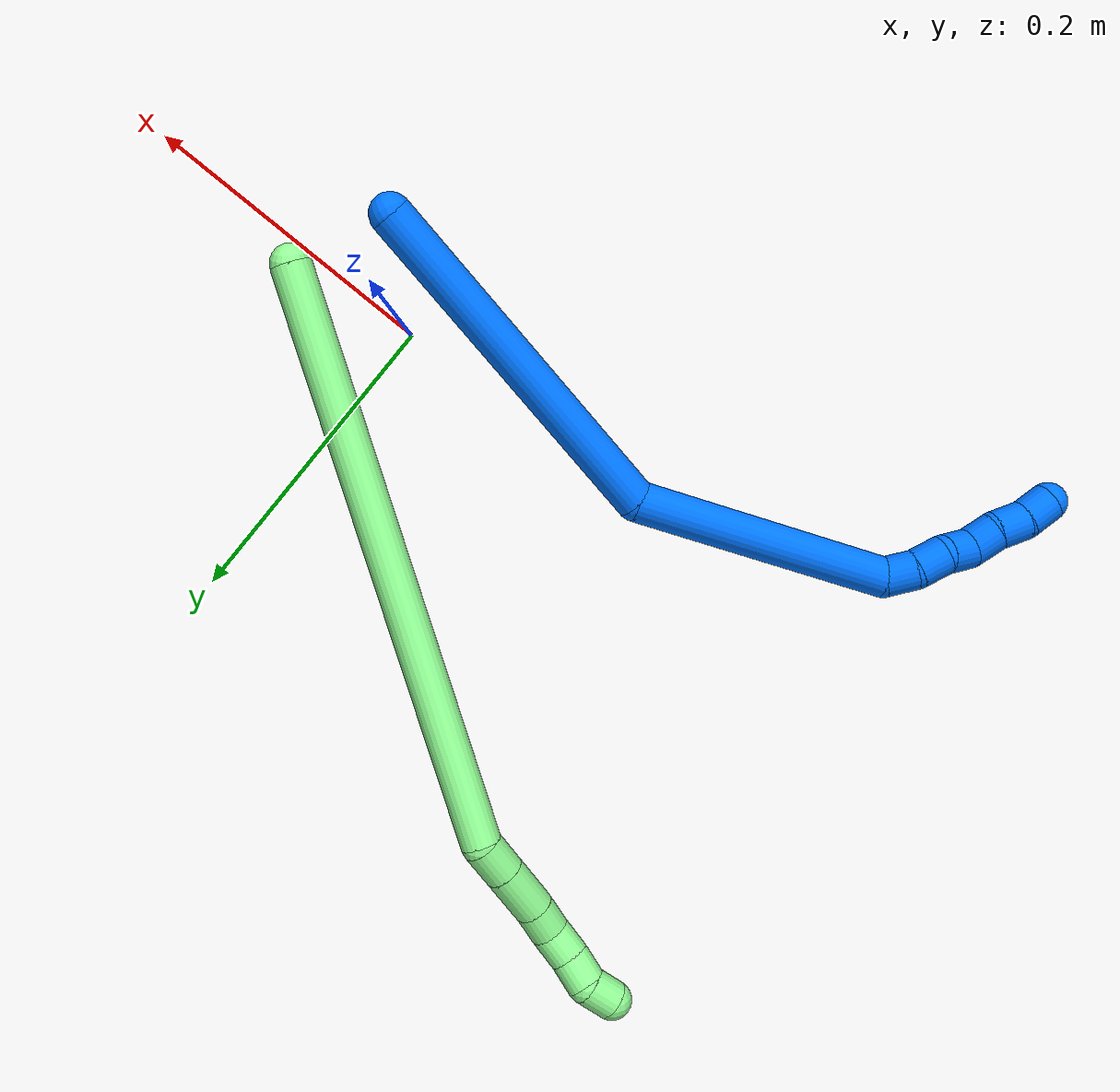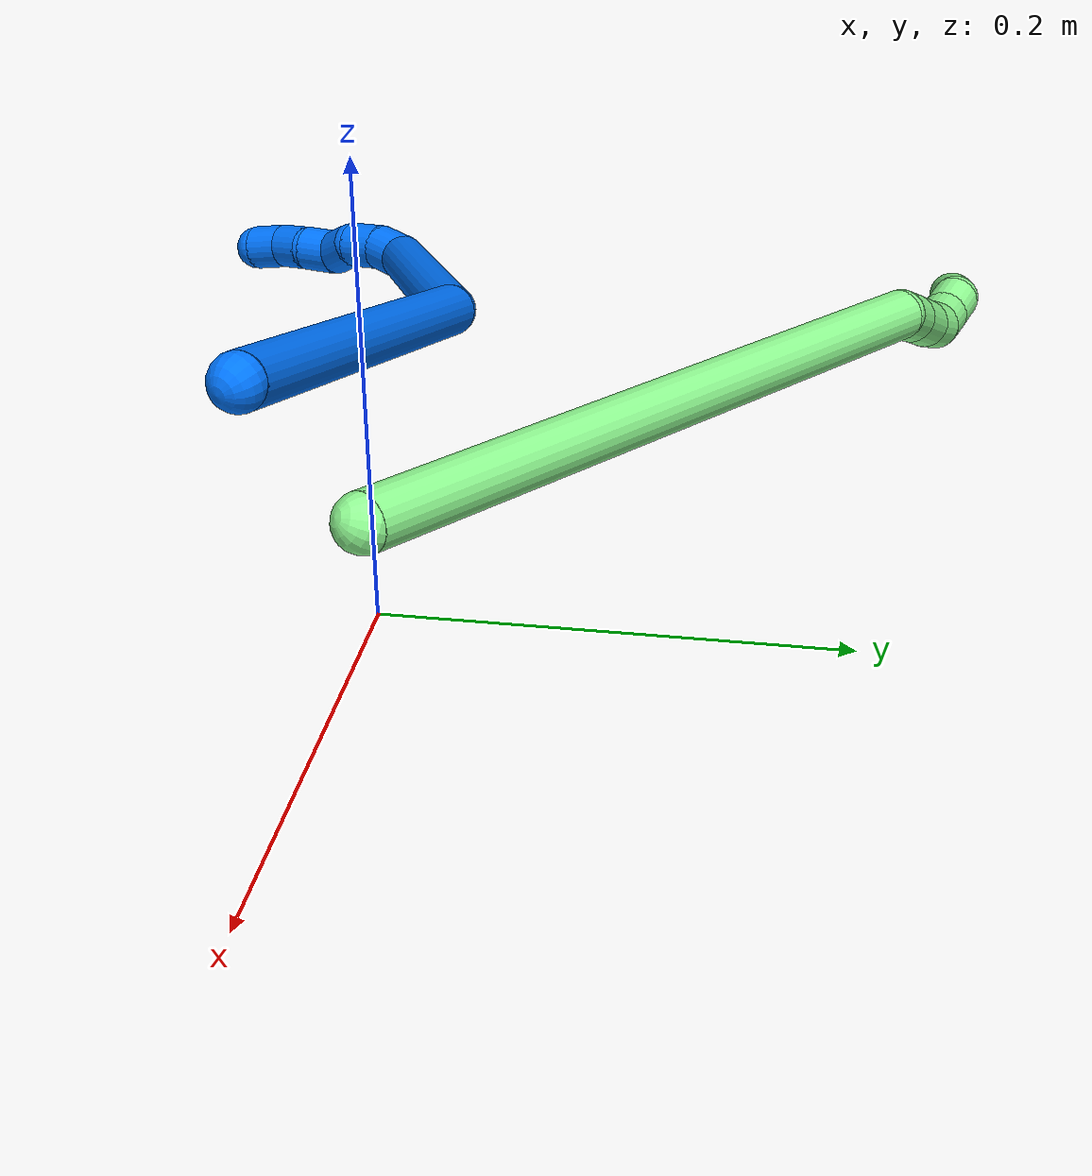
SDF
<sdf version="1.7">
 <world name="default">
  <model name="photoneo_s_sensor">
   <static>1</static>
   <pose>0 0 2 1.57079 1.57079 3.14159</pose>
   <link name="link">
    <inertial><mass>0.1</mass></inertial>
    <sensor name="sensor" type="depth">
     <update_rate>30</update_rate>
     <camera>
      <horizontal_fov>1.22</horizontal_fov>
      <image><width>1920</width><height>1200</height><format>B8G8R8</format></image>
      <clip><near>0.1</near><far>4</far></clip>
      <depth_camera><output>points</output></depth_camera>
     </camera>
     <plugin name="camera_plugin" filename="libgazebo_ros_depth_camera.so">
      <baseline>0.2</baseline>
      <alwaysOn>1</alwaysOn>
      <updateRate>0.0</updateRate>
      <cameraName>camera_ir</cameraName>
      <imageTopicName>/camera/color/image_raw</imageTopicName>
      <cameraInfoTopicName>/camera/color/camera_info</cameraInfoTopicName>
      <depthImageTopicName>/camera/depth/image_raw</depthImageTopicName>
      <depthImageCameraInfoTopicName>/camera/depth/camera_info</depthImageCameraInfoTopicName>
      <pointCloudTopicName>/camera/depth/points</pointCloudTopicName>
      <frameName>fr_optical</frameName>
      <pointCloudCutoff>0.1</pointCloudCutoff>
      <pointCloudCutoffMax>2.0</pointCloudCutoffMax>
      <distortionK1>0</distortionK1>
      <distortionK2>0</distortionK2>
      <distortionK3>0</distortionK3>
      <distortionT1>0</distortionT1>
      <distortionT2>0</distortionT2>
      <CxPrime>0</CxPrime>
      <Cx>0</Cx>
      <Cy>0</Cy>
      <focalLength>0</focalLength>
      <hackBaseline>0</hackBaseline>
     </plugin>
    </sensor>
   </link>
  </model>
  <model name="bin">
   <static>1</static>
   <link name="bottom">
    <collision name="collision-bottom">
     <pose>0 0 -0.01 0 -0 0</pose>
     <geometry><box><size>0.8 0.6 0.02</size></box></geometry>
     <surface>
      <friction><ode><mu>100</mu><mu2>100</mu2></ode></friction>
      <contact><collide_bitmask>65535</collide_bitmask></contact>
     </surface>
    </collision>
   </link>
   <link name="west_wall">
    <collision name="collision-west_wall">
     <pose>-0.41 0 0.1 0 -0 0</pose>
     <geometry><box><size>0.02 0.6 0.2</size></box></geometry>
     <surface>
      <friction><ode><mu>100</mu><mu2>100</mu2></ode></friction>
      <contact><collide_bitmask>65535</collide_bitmask></contact>
     </surface>
    </collision>
   </link>
   <link name="east_wall">
    <collision name="collision-east_wall">
     <pose>0.41 0 0.1 0 -0 0</pose>
     <geometry><box><size>0.02 0.6 0.2</size></box></geometry>
     <surface>
      <friction><ode><mu>100</mu><mu2>100</mu2></ode></friction>
      <contact><collide_bitmask>65535</collide_bitmask></contact>
     </surface>
    </collision>
   </link>
   <link name="south_wall">
    <collision name="collision-south_wall">
     <pose>0 -0.31 0.1 0 -0 0</pose>
     <geometry><box><size>0.8 0.02 0.2</size></box></geometry>
     <surface>
      <friction><ode><mu>100</mu><mu2>100</mu2></ode></friction>
      <contact><collide_bitmask>65535</collide_bitmask></contact>
     </surface>
    </collision>
   </link>
   <link name="north_wall">
    <collision name="collision-north_wall">
     <pose>0 0.31 0.1 0 -0 0</pose>
     <geometry><box><size>0.8 0.02 0.2</size></box></geometry>
     <surface>
      <friction><ode><mu>100</mu><mu2>100</mu2></ode></friction>
      <contact><collide_bitmask>65535</collide_bitmask></contact>
     </surface>
    </collision>
   </link>
  </model>
  <model name="13">
   <static>0</static>
   <link name="13">
    <collision name="collision-cylinder-e_1_1_4">
     <pose>-0.074193 -0.024125 0.162203 0.147653 -0.424874 -0.031903</pose>
     <geometry><cylinder><radius>0.0125</radius><length>0.359979</length></cylinder></geometry>
     <surface>
      <friction><ode><mu>1.16</mu><mu2>1.16</mu2><slip1>0</slip1><slip2>0</slip2></ode></friction>
      <contact><ode><kp>1e+06</kp><kd>1</kd><max_vel>0</max_vel><min_depth>0.001</min_depth></ode></contact>
     </surface>
    </collision>
    <visual name="visual-cylinder-e_1_1_4">
     <pose>-0.074193 -0.024125 0.162203 0.147653 -0.424874 -0.031903</pose>
     <geometry><cylinder><radius>0.0125</radius><length>0.359979</length></cylinder></geometry>
     <material><ambient>0.564706 0.984314 0.572549 1</ambient></material>
    </visual>
    <collision name="collision-cylinder-e_2_4_5">
     <pose>-0.153227 -0.044306 0.334832 -0.361691 -0.409707 0.075941</pose>
     <geometry><cylinder><radius>0.0125</radius><length>0.024309</length></cylinder></geometry>
     <surface>
      <friction><ode><mu>1.16</mu><mu2>1.16</mu2><slip1>0</slip1><slip2>0</slip2></ode></friction>
      <contact><ode><kp>1e+06</kp><kd>1</kd><max_vel>0</max_vel><min_depth>0.001</min_depth></ode></contact>
     </surface>
    </collision>
    <visual name="visual-cylinder-e_2_4_5">
     <pose>-0.153227 -0.044306 0.334832 -0.361691 -0.409707 0.075941</pose>
     <geometry><cylinder><radius>0.0125</radius><length>0.024309</length></cylinder></geometry>
     <material><ambient>0.564706 0.984314 0.572549 1</ambient></material>
    </visual>
    <collision name="collision-cylinder-e_3_5_6">
     <pose>-0.164613 -0.034723 0.359867 -0.368338 -0.395893 0.074691</pose>
     <geometry><cylinder><radius>0.0125</radius><length>0.033941</length></cylinder></geometry>
     <surface>
      <friction><ode><mu>1.16</mu><mu2>1.16</mu2><slip1>0</slip1><slip2>0</slip2></ode></friction>
      <contact><ode><kp>1e+06</kp><kd>1</kd><max_vel>0</max_vel><min_depth>0.001</min_depth></ode></contact>
     </surface>
    </collision>
    <visual name="visual-cylinder-e_3_5_6">
     <pose>-0.164613 -0.034723 0.359867 -0.368338 -0.395893 0.074691</pose>
     <geometry><cylinder><radius>0.0125</radius><length>0.033941</length></cylinder></geometry>
     <material><ambient>0.564706 0.984314 0.572549 1</ambient></material>
    </visual>
    <collision name="collision-cylinder-e_4_6_7">
     <pose>-0.175063 -0.026414 0.383832 -0.278034 -0.381672 0.054048</pose>
     <geometry><cylinder><radius>0.0125</radius><length>0.02097</length></cylinder></geometry>
     <surface>
      <friction><ode><mu>1.16</mu><mu2>1.16</mu2><slip1>0</slip1><slip2>0</slip2></ode></friction>
      <contact><ode><kp>1e+06</kp><kd>1</kd><max_vel>0</max_vel><min_depth>0.001</min_depth></ode></contact>
     </surface>
    </collision>
    <visual name="visual-cylinder-e_4_6_7">
     <pose>-0.175063 -0.026414 0.383832 -0.278034 -0.381672 0.054048</pose>
     <geometry><cylinder><radius>0.0125</radius><length>0.02097</length></cylinder></geometry>
     <material><ambient>0.564706 0.984314 0.572549 1</ambient></material>
    </visual>
    <collision name="collision-cylinder-e_5_7_8">
     <pose>-0.185608 -0.02307 0.401108 -0.084824 -0.695921 0.030783</pose>
     <geometry><cylinder><radius>0.0125</radius><length>0.020714</length></cylinder></geometry>
     <surface>
      <friction><ode><mu>1.16</mu><mu2>1.16</mu2><slip1>0</slip1><slip2>0</slip2></ode></friction>
      <contact><ode><kp>1e+06</kp><kd>1</kd><max_vel>0</max_vel><min_depth>0.001</min_depth></ode></contact>
     </surface>
    </collision>
    <visual name="visual-cylinder-e_5_7_8">
     <pose>-0.185608 -0.02307 0.401108 -0.084824 -0.695921 0.030783</pose>
     <geometry><cylinder><radius>0.0125</radius><length>0.020714</length></cylinder></geometry>
     <material><ambient>0.564706 0.984314 0.572549 1</ambient></material>
    </visual>
    <collision name="collision-cylinder-e_6_8_9">
     <pose>-0.199041 -0.023475 0.416306 0.14702 -0.745548 -0.057581</pose>
     <geometry><cylinder><radius>0.0125</radius><length>0.020027</length></cylinder></geometry>
     <surface>
      <friction><ode><mu>1.16</mu><mu2>1.16</mu2><slip1>0</slip1><slip2>0</slip2></ode></friction>
      <contact><ode><kp>1e+06</kp><kd>1</kd><max_vel>0</max_vel><min_depth>0.001</min_depth></ode></contact>
     </surface>
    </collision>
    <visual name="visual-cylinder-e_6_8_9">
     <pose>-0.199041 -0.023475 0.416306 0.14702 -0.745548 -0.057581</pose>
     <geometry><cylinder><radius>0.0125</radius><length>0.020027</length></cylinder></geometry>
     <material><ambient>0.564706 0.984314 0.572549 1</ambient></material>
    </visual>
    <collision name="collision-cylinder-e_7_9_2">
     <pose>-0.212263 -0.02036 0.43004 -0.575842 -0.695889 0.214007</pose>
     <geometry><cylinder><radius>0.0125</radius><length>0.02006</length></cylinder></geometry>
     <surface>
      <friction><ode><mu>1.16</mu><mu2>1.16</mu2><slip1>0</slip1><slip2>0</slip2></ode></friction>
      <contact><ode><kp>1e+06</kp><kd>1</kd><max_vel>0</max_vel><min_depth>0.001</min_depth></ode></contact>
     </surface>
    </collision>
    <visual name="visual-cylinder-e_7_9_2">
     <pose>-0.212263 -0.02036 0.43004 -0.575842 -0.695889 0.214007</pose>
     <geometry><cylinder><radius>0.0125</radius><length>0.02006</length></cylinder></geometry>
     <material><ambient>0.564706 0.984314 0.572549 1</ambient></material>
    </visual>
    <collision name="collision-sphere-2">
     <pose>-0.218693 -0.016169 0.436497 0 -0 0</pose>
     <geometry><sphere><radius>0.0125</radius></sphere></geometry>
     <surface>
      <friction><ode><mu>1.16</mu><mu2>1.16</mu2><slip1>0</slip1><slip2>0</slip2></ode></friction>
      <contact><ode><kp>1e+06</kp><kd>1</kd><max_vel>0</max_vel><min_depth>0.001</min_depth></ode></contact>
     </surface>
    </collision>
    <visual name="visual-sphere-2">
     <pose>-0.218693 -0.016169 0.436497 0 -0 0</pose>
     <geometry><sphere><radius>0.0125</radius></sphere></geometry>
     <material><ambient>0.564706 0.984314 0.572549 1</ambient></material>
    </visual>
    <collision name="collision-sphere-9">
     <pose>-0.205833 -0.024552 0.423584 0 -0 0</pose>
     <geometry><sphere><radius>0.0125</radius></sphere></geometry>
     <surface>
      <friction><ode><mu>1.16</mu><mu2>1.16</mu2><slip1>0</slip1><slip2>0</slip2></ode></friction>
      <contact><ode><kp>1e+06</kp><kd>1</kd><max_vel>0</max_vel><min_depth>0.001</min_depth></ode></contact>
     </surface>
    </collision>
    <visual name="visual-sphere-9">
     <pose>-0.205833 -0.024552 0.423584 0 -0 0</pose>
     <geometry><sphere><radius>0.0125</radius></sphere></geometry>
     <material><ambient>0.564706 0.984314 0.572549 1</ambient></material>
    </visual>
    <collision name="collision-sphere-4">
     <pose>-0.148386 -0.048251 0.324405 0 -0 0</pose>
     <geometry><sphere><radius>0.0125</radius></sphere></geometry>
     <surface>
      <friction><ode><mu>1.16</mu><mu2>1.16</mu2><slip1>0</slip1><slip2>0</slip2></ode></friction>
      <contact><ode><kp>1e+06</kp><kd>1</kd><max_vel>0</max_vel><min_depth>0.001</min_depth></ode></contact>
     </surface>
    </collision>
    <visual name="visual-sphere-4">
     <pose>-0.148386 -0.048251 0.324405 0 -0 0</pose>
     <geometry><sphere><radius>0.0125</radius></sphere></geometry>
     <material><ambient>0.564706 0.984314 0.572549 1</ambient></material>
    </visual>
    <collision name="collision-sphere-1">
     <geometry><sphere><radius>0.0125</radius></sphere></geometry>
     <surface>
      <friction><ode><mu>1.16</mu><mu2>1.16</mu2><slip1>0</slip1><slip2>0</slip2></ode></friction>
      <contact><ode><kp>1e+06</kp><kd>1</kd><max_vel>0</max_vel><min_depth>0.001</min_depth></ode></contact>
     </surface>
    </collision>
    <visual name="visual-sphere-1">
     <geometry><sphere><radius>0.0125</radius></sphere></geometry>
     <material><ambient>0.564706 0.984314 0.572549 1</ambient></material>
    </visual>
    <collision name="collision-sphere-8">
     <pose>-0.192248 -0.022397 0.409028 0 -0 0</pose>
     <geometry><sphere><radius>0.0125</radius></sphere></geometry>
     <surface>
      <friction><ode><mu>1.16</mu><mu2>1.16</mu2><slip1>0</slip1><slip2>0</slip2></ode></friction>
      <contact><ode><kp>1e+06</kp><kd>1</kd><max_vel>0</max_vel><min_depth>0.001</min_depth></ode></contact>
     </surface>
    </collision>
    <visual name="visual-sphere-8">
     <pose>-0.192248 -0.022397 0.409028 0 -0 0</pose>
     <geometry><sphere><radius>0.0125</radius></sphere></geometry>
     <material><ambient>0.564706 0.984314 0.572549 1</ambient></material>
    </visual>
    <collision name="collision-sphere-5">
     <pose>-0.158069 -0.040361 0.34526 0 -0 0</pose>
     <geometry><sphere><radius>0.0125</radius></sphere></geometry>
     <surface>
      <friction><ode><mu>1.16</mu><mu2>1.16</mu2><slip1>0</slip1><slip2>0</slip2></ode></friction>
      <contact><ode><kp>1e+06</kp><kd>1</kd><max_vel>0</max_vel><min_depth>0.001</min_depth></ode></contact>
     </surface>
    </collision>
    <visual name="visual-sphere-5">
     <pose>-0.158069 -0.040361 0.34526 0 -0 0</pose>
     <geometry><sphere><radius>0.0125</radius></sphere></geometry>
     <material><ambient>0.564706 0.984314 0.572549 1</ambient></material>
    </visual>
    <collision name="collision-sphere-6">
     <pose>-0.171158 -0.029085 0.374475 0 -0 0</pose>
     <geometry><sphere><radius>0.0125</radius></sphere></geometry>
     <surface>
      <friction><ode><mu>1.16</mu><mu2>1.16</mu2><slip1>0</slip1><slip2>0</slip2></ode></friction>
      <contact><ode><kp>1e+06</kp><kd>1</kd><max_vel>0</max_vel><min_depth>0.001</min_depth></ode></contact>
     </surface>
    </collision>
    <visual name="visual-sphere-6">
     <pose>-0.171158 -0.029085 0.374475 0 -0 0</pose>
     <geometry><sphere><radius>0.0125</radius></sphere></geometry>
     <material><ambient>0.564706 0.984314 0.572549 1</ambient></material>
    </visual>
    <collision name="collision-sphere-7">
     <pose>-0.178968 -0.023744 0.393188 0 -0 0</pose>
     <geometry><sphere><radius>0.0125</radius></sphere></geometry>
     <surface>
      <friction><ode><mu>1.16</mu><mu2>1.16</mu2><slip1>0</slip1><slip2>0</slip2></ode></friction>
      <contact><ode><kp>1e+06</kp><kd>1</kd><max_vel>0</max_vel><min_depth>0.001</min_depth></ode></contact>
     </surface>
    </collision>
    <visual name="visual-sphere-7">
     <pose>-0.178968 -0.023744 0.393188 0 -0 0</pose>
     <geometry><sphere><radius>0.0125</radius></sphere></geometry>
     <material><ambient>0.564706 0.984314 0.572549 1</ambient></material>
    </visual>
    <inertial>
     <pose>-0.103559 -0.025701 0.224129 0 -0 0</pose>
     <mass>0.5</mass>
     <inertia>
      <ixx>0.003434</ixx>
      <ixy>0</ixy>
      <ixz>0</ixz>
      <iyy>0.003763</iyy>
      <iyz>0</iyz>
      <izz>0.002168</izz>
     </inertia>
    </inertial>
   </link>
   <pose>0.066394 0.0154 0.082118 -2.07155 0.488067 0.448052</pose>
  </model>
  <model name="14">
   <static>0</static>
   <link name="14">
    <collision name="collision-cylinder-e_1_1_4">
     <pose>-0.045381 0.003114 0.098575 -0.031575 -0.431259 0.006917</pose>
     <geometry><cylinder><radius>0.0125</radius><length>0.217128</length></cylinder></geometry>
     <surface>
      <friction><ode><mu>1.16</mu><mu2>1.16</mu2><slip1>0</slip1><slip2>0</slip2></ode></friction>
      <contact><ode><kp>1e+06</kp><kd>1</kd><max_vel>0</max_vel><min_depth>0.001</min_depth></ode></contact>
     </surface>
    </collision>
    <visual name="visual-cylinder-e_1_1_4">
     <pose>-0.045381 0.003114 0.098575 -0.031575 -0.431259 0.006917</pose>
     <geometry><cylinder><radius>0.0125</radius><length>0.217128</length></cylinder></geometry>
     <material><ambient>0 0.462745 1 1</ambient></material>
    </visual>
    <collision name="collision-cylinder-e_2_4_5">
     <pose>-0.14422 -0.02451 0.249858 0.527946 -0.719461 -0.202606</pose>
     <geometry><cylinder><radius>0.0125</radius><length>0.162242</length></cylinder></geometry>
     <surface>
      <friction><ode><mu>1.16</mu><mu2>1.16</mu2><slip1>0</slip1><slip2>0</slip2></ode></friction>
      <contact><ode><kp>1e+06</kp><kd>1</kd><max_vel>0</max_vel><min_depth>0.001</min_depth></ode></contact>
     </surface>
    </collision>
    <visual name="visual-cylinder-e_2_4_5">
     <pose>-0.14422 -0.02451 0.249858 0.527946 -0.719461 -0.202606</pose>
     <geometry><cylinder><radius>0.0125</radius><length>0.162242</length></cylinder></geometry>
     <material><ambient>0 0.462745 1 1</ambient></material>
    </visual>
    <collision name="collision-cylinder-e_3_5_6">
     <pose>-0.203718 -0.062922 0.304818 1.28538 -0.646928 -0.491849</pose>
     <geometry><cylinder><radius>0.0125</radius><length>0.020046</length></cylinder></geometry>
     <surface>
      <friction><ode><mu>1.16</mu><mu2>1.16</mu2><slip1>0</slip1><slip2>0</slip2></ode></friction>
      <contact><ode><kp>1e+06</kp><kd>1</kd><max_vel>0</max_vel><min_depth>0.001</min_depth></ode></contact>
     </surface>
    </collision>
    <visual name="visual-cylinder-e_3_5_6">
     <pose>-0.203718 -0.062922 0.304818 1.28538 -0.646928 -0.491849</pose>
     <geometry><cylinder><radius>0.0125</radius><length>0.020046</length></cylinder></geometry>
     <material><ambient>0 0.462745 1 1</ambient></material>
    </visual>
    <collision name="collision-cylinder-e_4_6_7">
     <pose>-0.217097 -0.077482 0.306883 1.59798 -0.816983 -0.836986</pose>
     <geometry><cylinder><radius>0.0125</radius><length>0.020126</length></cylinder></geometry>
     <surface>
      <friction><ode><mu>1.16</mu><mu2>1.16</mu2><slip1>0</slip1><slip2>0</slip2></ode></friction>
      <contact><ode><kp>1e+06</kp><kd>1</kd><max_vel>0</max_vel><min_depth>0.001</min_depth></ode></contact>
     </surface>
    </collision>
    <visual name="visual-cylinder-e_4_6_7">
     <pose>-0.217097 -0.077482 0.306883 1.59798 -0.816983 -0.836986</pose>
     <geometry><cylinder><radius>0.0125</radius><length>0.020126</length></cylinder></geometry>
     <material><ambient>0 0.462745 1 1</ambient></material>
    </visual>
    <collision name="collision-cylinder-e_5_7_8">
     <pose>-0.233901 -0.087759 0.308421 1.10016 -1.18858 -0.785727</pose>
     <geometry><cylinder><radius>0.0125</radius><length>0.020408</length></cylinder></geometry>
     <surface>
      <friction><ode><mu>1.16</mu><mu2>1.16</mu2><slip1>0</slip1><slip2>0</slip2></ode></friction>
      <contact><ode><kp>1e+06</kp><kd>1</kd><max_vel>0</max_vel><min_depth>0.001</min_depth></ode></contact>
     </surface>
    </collision>
    <visual name="visual-cylinder-e_5_7_8">
     <pose>-0.233901 -0.087759 0.308421 1.10016 -1.18858 -0.785727</pose>
     <geometry><cylinder><radius>0.0125</radius><length>0.020408</length></cylinder></geometry>
     <material><ambient>0 0.462745 1 1</ambient></material>
    </visual>
    <collision name="collision-cylinder-e_6_8_9">
     <pose>-0.249883 -0.098662 0.309007 1.72148 -0.708769 -0.812916</pose>
     <geometry><cylinder><radius>0.0125</radius><length>0.020015</length></cylinder></geometry>
     <surface>
      <friction><ode><mu>1.16</mu><mu2>1.16</mu2><slip1>0</slip1><slip2>0</slip2></ode></friction>
      <contact><ode><kp>1e+06</kp><kd>1</kd><max_vel>0</max_vel><min_depth>0.001</min_depth></ode></contact>
     </surface>
    </collision>
    <visual name="visual-cylinder-e_6_8_9">
     <pose>-0.249883 -0.098662 0.309007 1.72148 -0.708769 -0.812916</pose>
     <geometry><cylinder><radius>0.0125</radius><length>0.020015</length></cylinder></geometry>
     <material><ambient>0 0.462745 1 1</ambient></material>
    </visual>
    <collision name="collision-cylinder-e_7_9_10">
     <pose>-0.264009 -0.112588 0.308857 1.41753 -0.864711 -0.753519</pose>
     <geometry><cylinder><radius>0.0125</radius><length>0.020007</length></cylinder></geometry>
     <surface>
      <friction><ode><mu>1.16</mu><mu2>1.16</mu2><slip1>0</slip1><slip2>0</slip2></ode></friction>
      <contact><ode><kp>1e+06</kp><kd>1</kd><max_vel>0</max_vel><min_depth>0.001</min_depth></ode></contact>
     </surface>
    </collision>
    <visual name="visual-cylinder-e_7_9_10">
     <pose>-0.264009 -0.112588 0.308857 1.41753 -0.864711 -0.753519</pose>
     <geometry><cylinder><radius>0.0125</radius><length>0.020007</length></cylinder></geometry>
     <material><ambient>0 0.462745 1 1</ambient></material>
    </visual>
    <collision name="collision-cylinder-e_8_10_2">
     <pose>-0.279262 -0.125255 0.308176 1.83219 -0.868056 -1.08641</pose>
     <geometry><cylinder><radius>0.0125</radius><length>0.020026</length></cylinder></geometry>
     <surface>
      <friction><ode><mu>1.16</mu><mu2>1.16</mu2><slip1>0</slip1><slip2>0</slip2></ode></friction>
      <contact><ode><kp>1e+06</kp><kd>1</kd><max_vel>0</max_vel><min_depth>0.001</min_depth></ode></contact>
     </surface>
    </collision>
    <visual name="visual-cylinder-e_8_10_2">
     <pose>-0.279262 -0.125255 0.308176 1.83219 -0.868056 -1.08641</pose>
     <geometry><cylinder><radius>0.0125</radius><length>0.020026</length></cylinder></geometry>
     <material><ambient>0 0.462745 1 1</ambient></material>
    </visual>
    <collision name="collision-sphere-2">
     <pose>-0.286903 -0.131507 0.306503 0 -0 0</pose>
     <geometry><sphere><radius>0.0125</radius></sphere></geometry>
     <surface>
      <friction><ode><mu>1.16</mu><mu2>1.16</mu2><slip1>0</slip1><slip2>0</slip2></ode></friction>
      <contact><ode><kp>1e+06</kp><kd>1</kd><max_vel>0</max_vel><min_depth>0.001</min_depth></ode></contact>
     </surface>
    </collision>
    <visual name="visual-sphere-2">
     <pose>-0.286903 -0.131507 0.306503 0 -0 0</pose>
     <geometry><sphere><radius>0.0125</radius></sphere></geometry>
     <material><ambient>0 0.462745 1 1</ambient></material>
    </visual>
    <collision name="collision-sphere-10">
     <pose>-0.271621 -0.119003 0.309848 0 -0 0</pose>
     <geometry><sphere><radius>0.0125</radius></sphere></geometry>
     <surface>
      <friction><ode><mu>1.16</mu><mu2>1.16</mu2><slip1>0</slip1><slip2>0</slip2></ode></friction>
      <contact><ode><kp>1e+06</kp><kd>1</kd><max_vel>0</max_vel><min_depth>0.001</min_depth></ode></contact>
     </surface>
    </collision>
    <visual name="visual-sphere-10">
     <pose>-0.271621 -0.119003 0.309848 0 -0 0</pose>
     <geometry><sphere><radius>0.0125</radius></sphere></geometry>
     <material><ambient>0 0.462745 1 1</ambient></material>
    </visual>
    <collision name="collision-sphere-9">
     <pose>-0.256397 -0.106173 0.307866 0 -0 0</pose>
     <geometry><sphere><radius>0.0125</radius></sphere></geometry>
     <surface>
      <friction><ode><mu>1.16</mu><mu2>1.16</mu2><slip1>0</slip1><slip2>0</slip2></ode></friction>
      <contact><ode><kp>1e+06</kp><kd>1</kd><max_vel>0</max_vel><min_depth>0.001</min_depth></ode></contact>
     </surface>
    </collision>
    <visual name="visual-sphere-9">
     <pose>-0.256397 -0.106173 0.307866 0 -0 0</pose>
     <geometry><sphere><radius>0.0125</radius></sphere></geometry>
     <material><ambient>0 0.462745 1 1</ambient></material>
    </visual>
    <collision name="collision-sphere-4">
     <pose>-0.090763 0.006227 0.197149 0 -0 0</pose>
     <geometry><sphere><radius>0.0125</radius></sphere></geometry>
     <surface>
      <friction><ode><mu>1.16</mu><mu2>1.16</mu2><slip1>0</slip1><slip2>0</slip2></ode></friction>
      <contact><ode><kp>1e+06</kp><kd>1</kd><max_vel>0</max_vel><min_depth>0.001</min_depth></ode></contact>
     </surface>
    </collision>
    <visual name="visual-sphere-4">
     <pose>-0.090763 0.006227 0.197149 0 -0 0</pose>
     <geometry><sphere><radius>0.0125</radius></sphere></geometry>
     <material><ambient>0 0.462745 1 1</ambient></material>
    </visual>
    <collision name="collision-sphere-1">
     <geometry><sphere><radius>0.0125</radius></sphere></geometry>
     <surface>
      <friction><ode><mu>1.16</mu><mu2>1.16</mu2><slip1>0</slip1><slip2>0</slip2></ode></friction>
      <contact><ode><kp>1e+06</kp><kd>1</kd><max_vel>0</max_vel><min_depth>0.001</min_depth></ode></contact>
     </surface>
    </collision>
    <visual name="visual-sphere-1">
     <geometry><sphere><radius>0.0125</radius></sphere></geometry>
     <material><ambient>0 0.462745 1 1</ambient></material>
    </visual>
    <collision name="collision-sphere-8">
     <pose>-0.243369 -0.091151 0.310147 0 -0 0</pose>
     <geometry><sphere><radius>0.0125</radius></sphere></geometry>
     <surface>
      <friction><ode><mu>1.16</mu><mu2>1.16</mu2><slip1>0</slip1><slip2>0</slip2></ode></friction>
      <contact><ode><kp>1e+06</kp><kd>1</kd><max_vel>0</max_vel><min_depth>0.001</min_depth></ode></contact>
     </surface>
    </collision>
    <visual name="visual-sphere-8">
     <pose>-0.243369 -0.091151 0.310147 0 -0 0</pose>
     <geometry><sphere><radius>0.0125</radius></sphere></geometry>
     <material><ambient>0 0.462745 1 1</ambient></material>
    </visual>
    <collision name="collision-sphere-5">
     <pose>-0.197677 -0.055248 0.302566 0 -0 0</pose>
     <geometry><sphere><radius>0.0125</radius></sphere></geometry>
     <surface>
      <friction><ode><mu>1.16</mu><mu2>1.16</mu2><slip1>0</slip1><slip2>0</slip2></ode></friction>
      <contact><ode><kp>1e+06</kp><kd>1</kd><max_vel>0</max_vel><min_depth>0.001</min_depth></ode></contact>
     </surface>
    </collision>
    <visual name="visual-sphere-5">
     <pose>-0.197677 -0.055248 0.302566 0 -0 0</pose>
     <geometry><sphere><radius>0.0125</radius></sphere></geometry>
     <material><ambient>0 0.462745 1 1</ambient></material>
    </visual>
    <collision name="collision-sphere-6">
     <pose>-0.20976 -0.070597 0.30707 0 -0 0</pose>
     <geometry><sphere><radius>0.0125</radius></sphere></geometry>
     <surface>
      <friction><ode><mu>1.16</mu><mu2>1.16</mu2><slip1>0</slip1><slip2>0</slip2></ode></friction>
      <contact><ode><kp>1e+06</kp><kd>1</kd><max_vel>0</max_vel><min_depth>0.001</min_depth></ode></contact>
     </surface>
    </collision>
    <visual name="visual-sphere-6">
     <pose>-0.20976 -0.070597 0.30707 0 -0 0</pose>
     <geometry><sphere><radius>0.0125</radius></sphere></geometry>
     <material><ambient>0 0.462745 1 1</ambient></material>
    </visual>
    <collision name="collision-sphere-7">
     <pose>-0.224434 -0.084366 0.306695 0 -0 0</pose>
     <geometry><sphere><radius>0.0125</radius></sphere></geometry>
     <surface>
      <friction><ode><mu>1.16</mu><mu2>1.16</mu2><slip1>0</slip1><slip2>0</slip2></ode></friction>
      <contact><ode><kp>1e+06</kp><kd>1</kd><max_vel>0</max_vel><min_depth>0.001</min_depth></ode></contact>
     </surface>
    </collision>
    <visual name="visual-sphere-7">
     <pose>-0.224434 -0.084366 0.306695 0 -0 0</pose>
     <geometry><sphere><radius>0.0125</radius></sphere></geometry>
     <material><ambient>0 0.462745 1 1</ambient></material>
    </visual>
    <inertial>
     <pose>-0.12471 -0.029296 0.198116 0 -0 0</pose>
     <mass>0.5</mass>
     <inertia>
      <ixx>0.000978</ixx>
      <ixy>0</ixy>
      <ixz>0</ixz>
      <iyy>0.001133</iyy>
      <iyz>0</iyz>
      <izz>0.000747</izz>
     </inertia>
    </inertial>
   </link>
   <pose>0.031194 -0.040299 0.11929 -1.42195 -0.875111 1.03149</pose>
  </model>
 </world>
</sdf>
